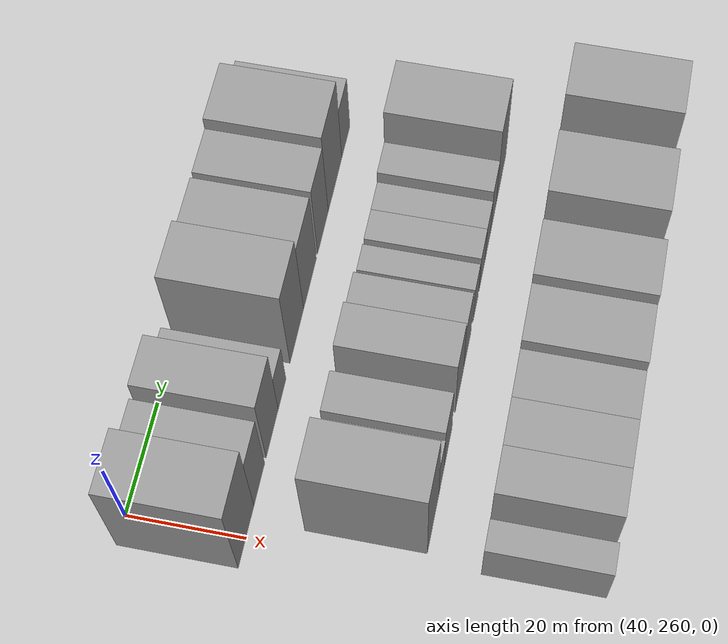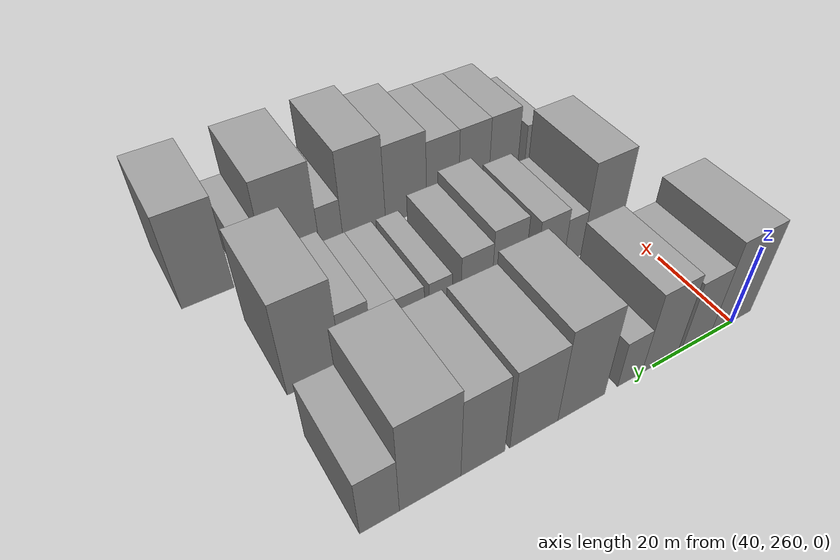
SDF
<sdf version="1.6">
 <world name="default">
  <model name="building_75">
   <static>1</static>
   <pose>50.0000 260.2213 0 0.000000 0.000000 0.000000</pose>
   <link name="link">
    <pose>0 0 12.00 0 0 0</pose>
    <collision name="collision"><geometry><box><size>20.0000 10.6017 24.0000</size></box></geometry></collision>
    <visual name="visual">
     <cast_shadows>0</cast_shadows>
     <geometry><box><size>20.0000 10.6017 24.0000</size></box></geometry>
     <material>
      <script>
       <uri>model://grey_wall/materials/scripts</uri>
       <uri>model://grey_wall/materials/textures</uri>
       <name>vrc/grey_wall</name>
      </script>
     </material>
    </visual>
   </link>
  </model>
  <model name="building_76">
   <static>1</static>
   <pose>50.0000 269.2332 0 0.000000 0.000000 0.000000</pose>
   <link name="link">
    <pose>0 0 9.00 0 0 0</pose>
    <collision name="collision"><geometry><box><size>20.0000 7.4221 18.0000</size></box></geometry></collision>
    <visual name="visual">
     <cast_shadows>0</cast_shadows>
     <geometry><box><size>20.0000 7.4221 18.0000</size></box></geometry>
     <material>
      <script>
       <uri>model://grey_wall/materials/scripts</uri>
       <uri>model://grey_wall/materials/textures</uri>
       <name>vrc/grey_wall</name>
      </script>
     </material>
    </visual>
   </link>
  </model>
  <model name="building_77">
   <static>1</static>
   <pose>50.0000 278.3002 0 0.000000 0.000000 0.000000</pose>
   <link name="link">
    <pose>0 0 10.50 0 0 0</pose>
    <collision name="collision"><geometry><box><size>20.0000 8.7118 21.0000</size></box></geometry></collision>
    <visual name="visual">
     <cast_shadows>0</cast_shadows>
     <geometry><box><size>20.0000 8.7118 21.0000</size></box></geometry>
     <material>
      <script>
       <uri>model://grey_wall/materials/scripts</uri>
       <uri>model://grey_wall/materials/textures</uri>
       <name>vrc/grey_wall</name>
      </script>
     </material>
    </visual>
   </link>
  </model>
  <model name="building_78">
   <static>1</static>
   <pose>50.0000 285.4928 0 0.000000 0.000000 0.000000</pose>
   <link name="link">
    <pose>0 0 6.00 0 0 0</pose>
    <collision name="collision"><geometry><box><size>20.0000 5.6735 12.0000</size></box></geometry></collision>
    <visual name="visual">
     <cast_shadows>0</cast_shadows>
     <geometry><box><size>20.0000 5.6735 12.0000</size></box></geometry>
     <material>
      <script>
       <uri>model://grey_wall/materials/scripts</uri>
       <uri>model://grey_wall/materials/textures</uri>
       <name>vrc/grey_wall</name>
      </script>
     </material>
    </visual>
   </link>
  </model>
  <model name="building_79">
   <static>1</static>
   <pose>50.0000 296.5106 0 0.000000 0.000000 0.000000</pose>
   <link name="link">
    <pose>0 0 12.00 0 0 0</pose>
    <collision name="collision"><geometry><box><size>20.0000 10.3621 24.0000</size></box></geometry></collision>
    <visual name="visual">
     <cast_shadows>0</cast_shadows>
     <geometry><box><size>20.0000 10.3621 24.0000</size></box></geometry>
     <material>
      <script>
       <uri>model://grey_wall/materials/scripts</uri>
       <uri>model://grey_wall/materials/textures</uri>
       <name>vrc/grey_wall</name>
      </script>
     </material>
    </visual>
   </link>
  </model>
  <model name="building_80">
   <static>1</static>
   <pose>50.0000 306.6977 0 0.000000 0.000000 0.000000</pose>
   <link name="link">
    <pose>0 0 10.50 0 0 0</pose>
    <collision name="collision"><geometry><box><size>20.0000 10.0122 21.0000</size></box></geometry></collision>
    <visual name="visual">
     <cast_shadows>0</cast_shadows>
     <geometry><box><size>20.0000 10.0122 21.0000</size></box></geometry>
     <material>
      <script>
       <uri>model://grey_wall/materials/scripts</uri>
       <uri>model://grey_wall/materials/textures</uri>
       <name>vrc/grey_wall</name>
      </script>
     </material>
    </visual>
   </link>
  </model>
  <model name="building_81">
   <static>1</static>
   <pose>50.0000 317.0325 0 0.000000 0.000000 0.000000</pose>
   <link name="link">
    <pose>0 0 10.50 0 0 0</pose>
    <collision name="collision"><geometry><box><size>20.0000 8.6572 21.0000</size></box></geometry></collision>
    <visual name="visual">
     <cast_shadows>0</cast_shadows>
     <geometry><box><size>20.0000 8.6572 21.0000</size></box></geometry>
     <material>
      <script>
       <uri>model://grey_wall/materials/scripts</uri>
       <uri>model://grey_wall/materials/textures</uri>
       <name>vrc/grey_wall</name>
      </script>
     </material>
    </visual>
   </link>
  </model>
  <model name="building_82">
   <static>1</static>
   <pose>50.0000 327.0471 0 0.000000 0.000000 0.000000</pose>
   <link name="link">
    <pose>0 0 12.00 0 0 0</pose>
    <collision name="collision"><geometry><box><size>20.0000 11.3720 24.0000</size></box></geometry></collision>
    <visual name="visual">
     <cast_shadows>0</cast_shadows>
     <geometry><box><size>20.0000 11.3720 24.0000</size></box></geometry>
     <material>
      <script>
       <uri>model://grey_wall/materials/scripts</uri>
       <uri>model://grey_wall/materials/textures</uri>
       <name>vrc/grey_wall</name>
      </script>
     </material>
    </visual>
   </link>
  </model>
  <model name="building_83">
   <static>1</static>
   <pose>50.0000 336.2310 0 0.000000 0.000000 0.000000</pose>
   <link name="link">
    <pose>0 0 7.50 0 0 0</pose>
    <collision name="collision"><geometry><box><size>20.0000 6.9957 15.0000</size></box></geometry></collision>
    <visual name="visual">
     <cast_shadows>0</cast_shadows>
     <geometry><box><size>20.0000 6.9957 15.0000</size></box></geometry>
     <material>
      <script>
       <uri>model://grey_wall/materials/scripts</uri>
       <uri>model://grey_wall/materials/textures</uri>
       <name>vrc/grey_wall</name>
      </script>
     </material>
    </visual>
   </link>
  </model>
  <model name="building_146">
   <static>1</static>
   <pose>79.0000 267.9897 0 0.000000 0.000000 0.000000</pose>
   <link name="link">
    <pose>0 0 12.00 0 0 0</pose>
    <collision name="collision"><geometry><box><size>20.0000 9.9591 24.0000</size></box></geometry></collision>
    <visual name="visual">
     <cast_shadows>0</cast_shadows>
     <geometry><box><size>20.0000 9.9591 24.0000</size></box></geometry>
     <material>
      <script>
       <uri>model://grey_wall/materials/scripts</uri>
       <uri>model://grey_wall/materials/textures</uri>
       <name>vrc/grey_wall</name>
      </script>
     </material>
    </visual>
   </link>
  </model>
  <model name="building_147">
   <static>1</static>
   <pose>79.0000 275.4000 0 0.000000 0.000000 0.000000</pose>
   <link name="link">
    <pose>0 0 6.00 0 0 0</pose>
    <collision name="collision"><geometry><box><size>20.0000 4.8614 12.0000</size></box></geometry></collision>
    <visual name="visual">
     <cast_shadows>0</cast_shadows>
     <geometry><box><size>20.0000 4.8614 12.0000</size></box></geometry>
     <material>
      <script>
       <uri>model://grey_wall/materials/scripts</uri>
       <uri>model://grey_wall/materials/textures</uri>
       <name>vrc/grey_wall</name>
      </script>
     </material>
    </visual>
   </link>
  </model>
  <model name="building_148">
   <static>1</static>
   <pose>79.0000 281.3411 0 0.000000 0.000000 0.000000</pose>
   <link name="link">
    <pose>0 0 7.50 0 0 0</pose>
    <collision name="collision"><geometry><box><size>20.0000 7.0207 15.0000</size></box></geometry></collision>
    <visual name="visual">
     <cast_shadows>0</cast_shadows>
     <geometry><box><size>20.0000 7.0207 15.0000</size></box></geometry>
     <material>
      <script>
       <uri>model://grey_wall/materials/scripts</uri>
       <uri>model://grey_wall/materials/textures</uri>
       <name>vrc/grey_wall</name>
      </script>
     </material>
    </visual>
   </link>
  </model>
  <model name="building_149">
   <static>1</static>
   <pose>79.0000 291.7691 0 0.000000 0.000000 0.000000</pose>
   <link name="link">
    <pose>0 0 9.00 0 0 0</pose>
    <collision name="collision"><geometry><box><size>20.0000 7.8353 18.0000</size></box></geometry></collision>
    <visual name="visual">
     <cast_shadows>0</cast_shadows>
     <geometry><box><size>20.0000 7.8353 18.0000</size></box></geometry>
     <material>
      <script>
       <uri>model://grey_wall/materials/scripts</uri>
       <uri>model://grey_wall/materials/textures</uri>
       <name>vrc/grey_wall</name>
      </script>
     </material>
    </visual>
   </link>
  </model>
  <model name="building_150">
   <static>1</static>
   <pose>79.0000 299.2322 0 0.000000 0.000000 0.000000</pose>
   <link name="link">
    <pose>0 0 7.50 0 0 0</pose>
    <collision name="collision"><geometry><box><size>20.0000 7.0910 15.0000</size></box></geometry></collision>
    <visual name="visual">
     <cast_shadows>0</cast_shadows>
     <geometry><box><size>20.0000 7.0910 15.0000</size></box></geometry>
     <material>
      <script>
       <uri>model://grey_wall/materials/scripts</uri>
       <uri>model://grey_wall/materials/textures</uri>
       <name>vrc/grey_wall</name>
      </script>
     </material>
    </visual>
   </link>
  </model>
  <model name="building_151">
   <static>1</static>
   <pose>79.0000 307.2653 0 0.000000 0.000000 0.000000</pose>
   <link name="link">
    <pose>0 0 6.00 0 0 0</pose>
    <collision name="collision"><geometry><box><size>20.0000 4.9753 12.0000</size></box></geometry></collision>
    <visual name="visual">
     <cast_shadows>0</cast_shadows>
     <geometry><box><size>20.0000 4.9753 12.0000</size></box></geometry>
     <material>
      <script>
       <uri>model://grey_wall/materials/scripts</uri>
       <uri>model://grey_wall/materials/textures</uri>
       <name>vrc/grey_wall</name>
      </script>
     </material>
    </visual>
   </link>
  </model>
  <model name="building_152">
   <static>1</static>
   <pose>79.0000 313.6646 0 0.000000 0.000000 0.000000</pose>
   <link name="link">
    <pose>0 0 6.00 0 0 0</pose>
    <collision name="collision"><geometry><box><size>20.0000 5.8233 12.0000</size></box></geometry></collision>
    <visual name="visual">
     <cast_shadows>0</cast_shadows>
     <geometry><box><size>20.0000 5.8233 12.0000</size></box></geometry>
     <material>
      <script>
       <uri>model://grey_wall/materials/scripts</uri>
       <uri>model://grey_wall/materials/textures</uri>
       <name>vrc/grey_wall</name>
      </script>
     </material>
    </visual>
   </link>
  </model>
  <model name="building_153">
   <static>1</static>
   <pose>79.0000 319.3100 0 0.000000 0.000000 0.000000</pose>
   <link name="link">
    <pose>0 0 6.00 0 0 0</pose>
    <collision name="collision"><geometry><box><size>20.0000 5.4674 12.0000</size></box></geometry></collision>
    <visual name="visual">
     <cast_shadows>0</cast_shadows>
     <geometry><box><size>20.0000 5.4674 12.0000</size></box></geometry>
     <material>
      <script>
       <uri>model://grey_wall/materials/scripts</uri>
       <uri>model://grey_wall/materials/textures</uri>
       <name>vrc/grey_wall</name>
      </script>
     </material>
    </visual>
   </link>
  </model>
  <model name="building_154">
   <static>1</static>
   <pose>79.0000 325.1521 0 0.000000 0.000000 0.000000</pose>
   <link name="link">
    <pose>0 0 7.50 0 0 0</pose>
    <collision name="collision"><geometry><box><size>20.0000 6.2168 15.0000</size></box></geometry></collision>
    <visual name="visual">
     <cast_shadows>0</cast_shadows>
     <geometry><box><size>20.0000 6.2168 15.0000</size></box></geometry>
     <material>
      <script>
       <uri>model://grey_wall/materials/scripts</uri>
       <uri>model://grey_wall/materials/textures</uri>
       <name>vrc/grey_wall</name>
      </script>
     </material>
    </visual>
   </link>
  </model>
  <model name="building_155">
   <static>1</static>
   <pose>79.0000 333.5930 0 0.000000 0.000000 0.000000</pose>
   <link name="link">
    <pose>0 0 12.00 0 0 0</pose>
    <collision name="collision"><geometry><box><size>20.0000 10.6649 24.0000</size></box></geometry></collision>
    <visual name="visual">
     <cast_shadows>0</cast_shadows>
     <geometry><box><size>20.0000 10.6649 24.0000</size></box></geometry>
     <material>
      <script>
       <uri>model://grey_wall/materials/scripts</uri>
       <uri>model://grey_wall/materials/textures</uri>
       <name>vrc/grey_wall</name>
      </script>
     </material>
    </visual>
   </link>
  </model>
  <model name="building_223">
   <static>1</static>
   <pose>108.0000 263.9285 0 0.000000 0.000000 0.000000</pose>
   <link name="link">
    <pose>0 0 6.00 0 0 0</pose>
    <collision name="collision"><geometry><box><size>20.0000 5.2470 12.0000</size></box></geometry></collision>
    <visual name="visual">
     <cast_shadows>0</cast_shadows>
     <geometry><box><size>20.0000 5.2470 12.0000</size></box></geometry>
     <material>
      <script>
       <uri>model://grey_wall/materials/scripts</uri>
       <uri>model://grey_wall/materials/textures</uri>
       <name>vrc/grey_wall</name>
      </script>
     </material>
    </visual>
   </link>
  </model>
  <model name="building_224">
   <static>1</static>
   <pose>108.0000 272.5349 0 0.000000 0.000000 0.000000</pose>
   <link name="link">
    <pose>0 0 9.00 0 0 0</pose>
    <collision name="collision"><geometry><box><size>20.0000 7.9658 18.0000</size></box></geometry></collision>
    <visual name="visual">
     <cast_shadows>0</cast_shadows>
     <geometry><box><size>20.0000 7.9658 18.0000</size></box></geometry>
     <material>
      <script>
       <uri>model://grey_wall/materials/scripts</uri>
       <uri>model://grey_wall/materials/textures</uri>
       <name>vrc/grey_wall</name>
      </script>
     </material>
    </visual>
   </link>
  </model>
  <model name="building_225">
   <static>1</static>
   <pose>108.0000 280.5623 0 0.000000 0.000000 0.000000</pose>
   <link name="link">
    <pose>0 0 9.00 0 0 0</pose>
    <collision name="collision"><geometry><box><size>20.0000 8.0891 18.0000</size></box></geometry></collision>
    <visual name="visual">
     <cast_shadows>0</cast_shadows>
     <geometry><box><size>20.0000 8.0891 18.0000</size></box></geometry>
     <material>
      <script>
       <uri>model://grey_wall/materials/scripts</uri>
       <uri>model://grey_wall/materials/textures</uri>
       <name>vrc/grey_wall</name>
      </script>
     </material>
    </visual>
   </link>
  </model>
  <model name="building_226">
   <static>1</static>
   <pose>108.0000 288.7895 0 0.000000 0.000000 0.000000</pose>
   <link name="link">
    <pose>0 0 9.00 0 0 0</pose>
    <collision name="collision"><geometry><box><size>20.0000 8.3652 18.0000</size></box></geometry></collision>
    <visual name="visual">
     <cast_shadows>0</cast_shadows>
     <geometry><box><size>20.0000 8.3652 18.0000</size></box></geometry>
     <material>
      <script>
       <uri>model://grey_wall/materials/scripts</uri>
       <uri>model://grey_wall/materials/textures</uri>
       <name>vrc/grey_wall</name>
      </script>
     </material>
    </visual>
   </link>
  </model>
  <model name="building_227">
   <static>1</static>
   <pose>108.0000 298.0844 0 0.000000 0.000000 0.000000</pose>
   <link name="link">
    <pose>0 0 10.50 0 0 0</pose>
    <collision name="collision"><geometry><box><size>20.0000 10.2246 21.0000</size></box></geometry></collision>
    <visual name="visual">
     <cast_shadows>0</cast_shadows>
     <geometry><box><size>20.0000 10.2246 21.0000</size></box></geometry>
     <material>
      <script>
       <uri>model://grey_wall/materials/scripts</uri>
       <uri>model://grey_wall/materials/textures</uri>
       <name>vrc/grey_wall</name>
      </script>
     </material>
    </visual>
   </link>
  </model>
  <model name="building_228">
   <static>1</static>
   <pose>108.0000 308.2758 0 0.000000 0.000000 0.000000</pose>
   <link name="link">
    <pose>0 0 12.00 0 0 0</pose>
    <collision name="collision"><geometry><box><size>20.0000 10.1583 24.0000</size></box></geometry></collision>
    <visual name="visual">
     <cast_shadows>0</cast_shadows>
     <geometry><box><size>20.0000 10.1583 24.0000</size></box></geometry>
     <material>
      <script>
       <uri>model://grey_wall/materials/scripts</uri>
       <uri>model://grey_wall/materials/textures</uri>
       <name>vrc/grey_wall</name>
      </script>
     </material>
    </visual>
   </link>
  </model>
  <model name="building_229">
   <static>1</static>
   <pose>108.0000 316.0092 0 0.000000 0.000000 0.000000</pose>
   <link name="link">
    <pose>0 0 6.00 0 0 0</pose>
    <collision name="collision"><geometry><box><size>20.0000 5.3085 12.0000</size></box></geometry></collision>
    <visual name="visual">
     <cast_shadows>0</cast_shadows>
     <geometry><box><size>20.0000 5.3085 12.0000</size></box></geometry>
     <material>
      <script>
       <uri>model://grey_wall/materials/scripts</uri>
       <uri>model://grey_wall/materials/textures</uri>
       <name>vrc/grey_wall</name>
      </script>
     </material>
    </visual>
   </link>
  </model>
  <model name="building_230">
   <static>1</static>
   <pose>108.0000 324.5945 0 0.000000 0.000000 0.000000</pose>
   <link name="link">
    <pose>0 0 12.00 0 0 0</pose>
    <collision name="collision"><geometry><box><size>20.0000 11.8621 24.0000</size></box></geometry></collision>
    <visual name="visual">
     <cast_shadows>0</cast_shadows>
     <geometry><box><size>20.0000 11.8621 24.0000</size></box></geometry>
     <material>
      <script>
       <uri>model://grey_wall/materials/scripts</uri>
       <uri>model://grey_wall/materials/textures</uri>
       <name>vrc/grey_wall</name>
      </script>
     </material>
    </visual>
   </link>
  </model>
  <model name="building_231">
   <static>1</static>
   <pose>108.0000 333.0503 0 0.000000 0.000000 0.000000</pose>
   <link name="link">
    <pose>0 0 6.00 0 0 0</pose>
    <collision name="collision"><geometry><box><size>20.0000 5.0495 12.0000</size></box></geometry></collision>
    <visual name="visual">
     <cast_shadows>0</cast_shadows>
     <geometry><box><size>20.0000 5.0495 12.0000</size></box></geometry>
     <material>
      <script>
       <uri>model://grey_wall/materials/scripts</uri>
       <uri>model://grey_wall/materials/textures</uri>
       <name>vrc/grey_wall</name>
      </script>
     </material>
    </visual>
   </link>
  </model>
  <model name="building_232">
   <static>1</static>
   <pose>108.0000 342.9438 0 0.000000 0.000000 0.000000</pose>
   <link name="link">
    <pose>0 0 12.00 0 0 0</pose>
    <collision name="collision"><geometry><box><size>20.0000 10.7374 24.0000</size></box></geometry></collision>
    <visual name="visual">
     <cast_shadows>0</cast_shadows>
     <geometry><box><size>20.0000 10.7374 24.0000</size></box></geometry>
     <material>
      <script>
       <uri>model://grey_wall/materials/scripts</uri>
       <uri>model://grey_wall/materials/textures</uri>
       <name>vrc/grey_wall</name>
      </script>
     </material>
    </visual>
   </link>
  </model>
 </world>
</sdf>
